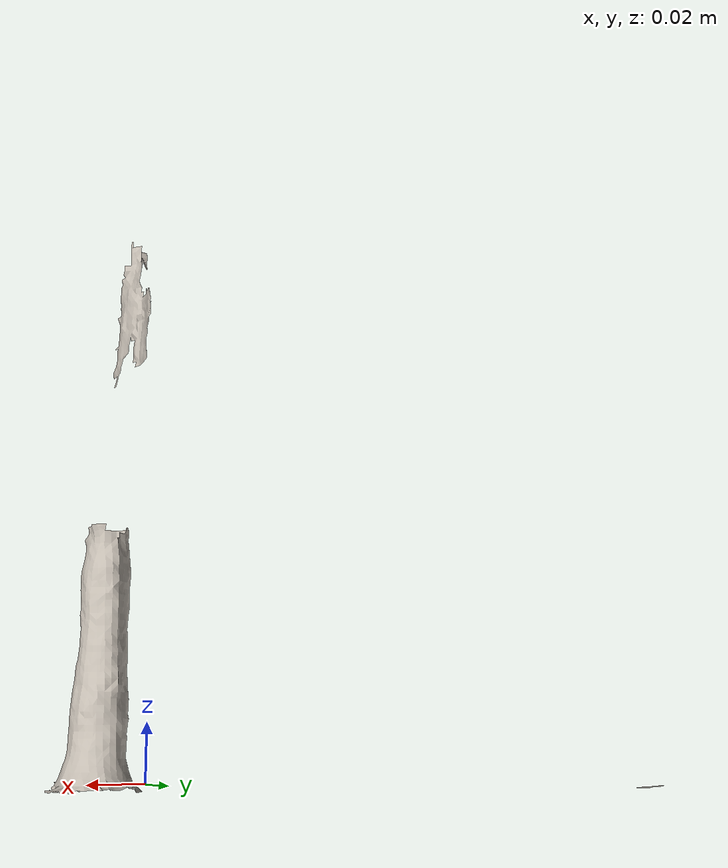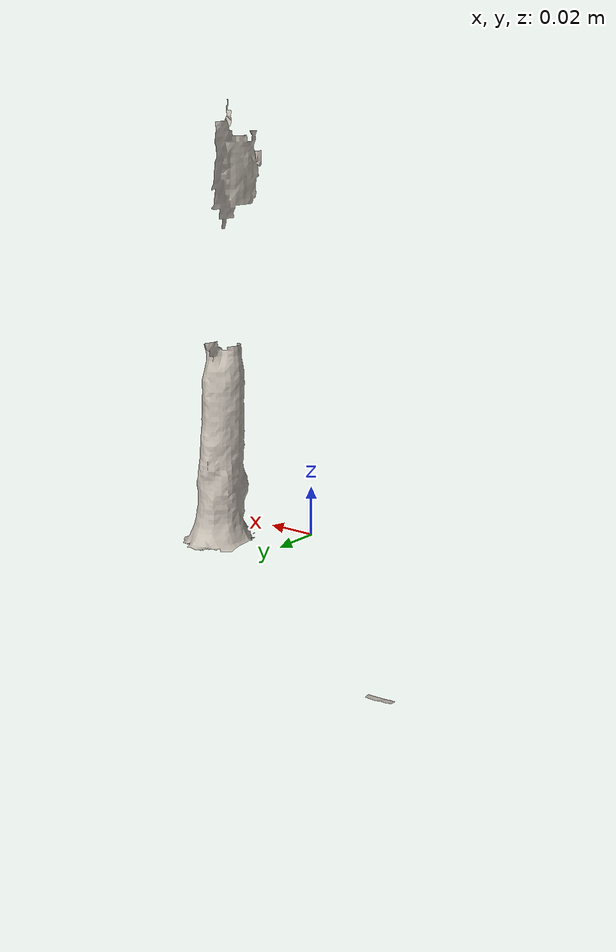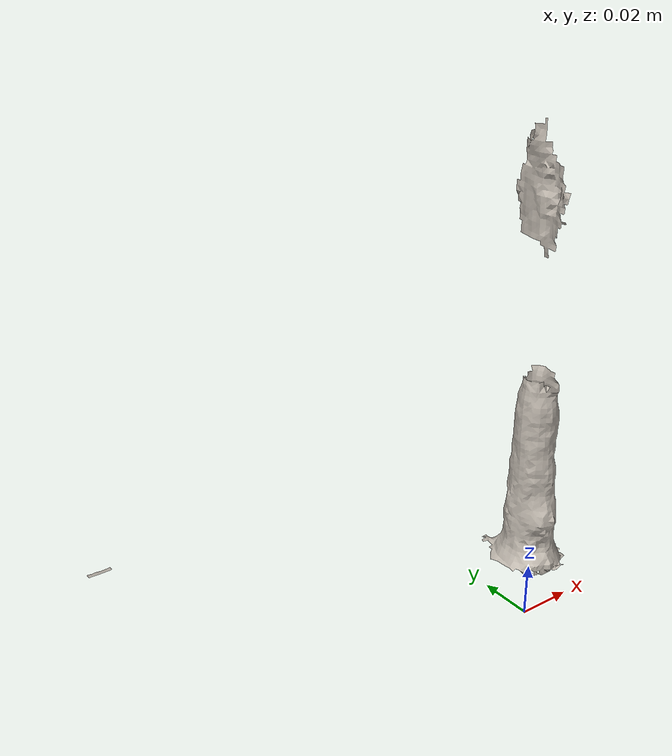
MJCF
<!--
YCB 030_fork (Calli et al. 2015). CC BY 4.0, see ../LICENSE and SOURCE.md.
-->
<mujoco model="ycb_030_fork">
  <compiler angle="radian" meshdir="." texturedir="."/>
  <asset>
    <texture name="fork" type="2d" file="texture_map.png"/>
    <material name="fork" texture="fork"/>
    <mesh name="fork" file="textured.obj"/>
  </asset>
  <worldbody>
    <body name="fork">
      <freejoint name="fork_free"/>
      <geom name="fork_visual" type="mesh" mesh="fork" material="fork" pos="0.0254 0.0223 -0.0070"
            contype="0" conaffinity="0" group="2" mass="0"/>
      <geom name="fork_collision" type="mesh" mesh="fork" pos="0.0254 0.0223 -0.0070" mass="0.034"
            group="3" condim="4" friction="0.9 0.005 0.0001"/>
    </body>
  </worldbody>
</mujoco>
